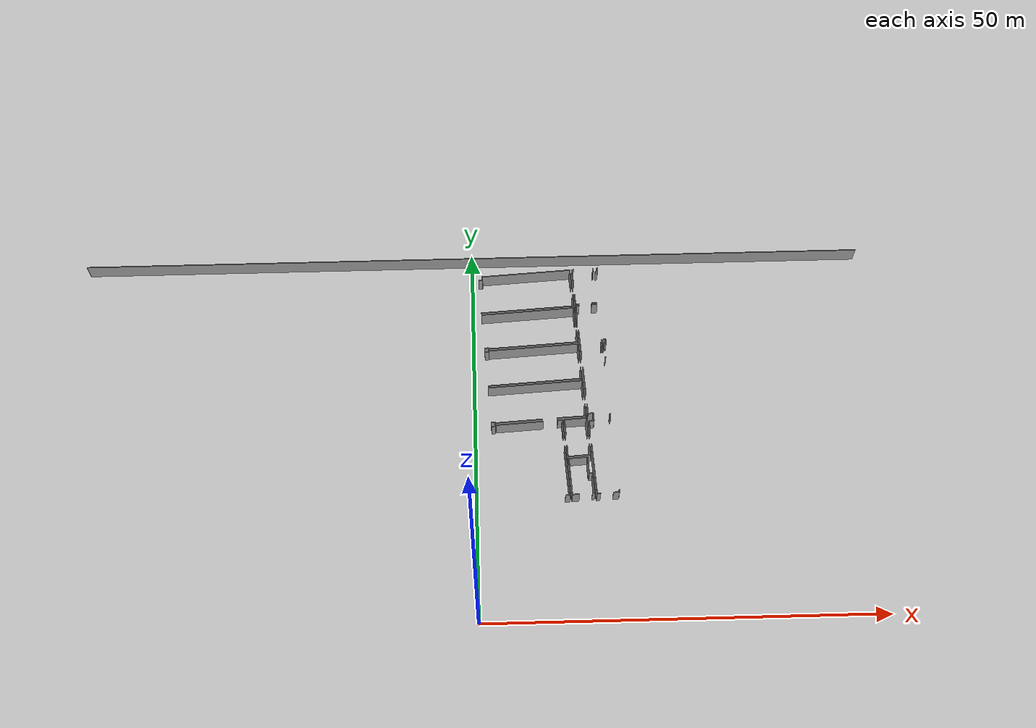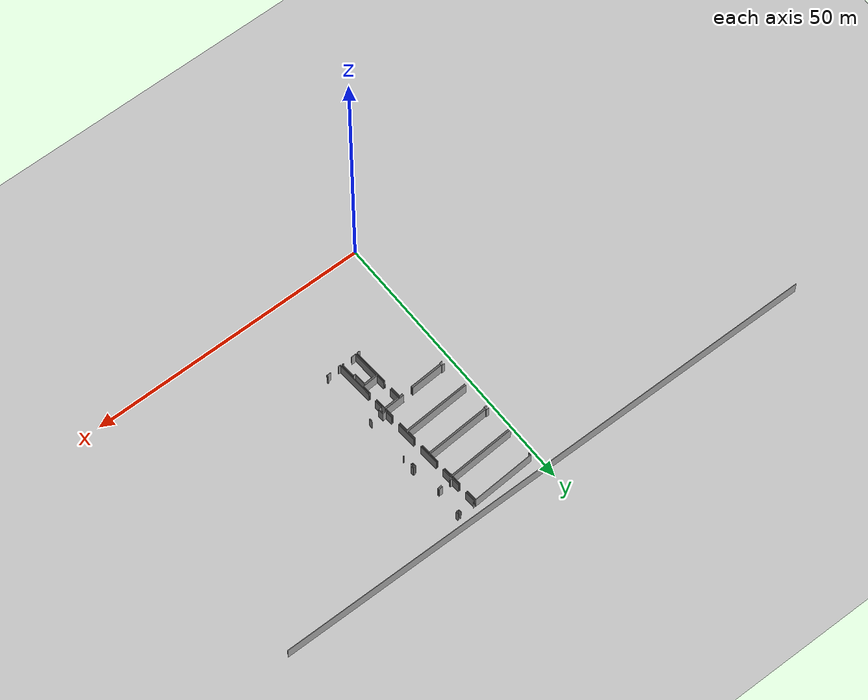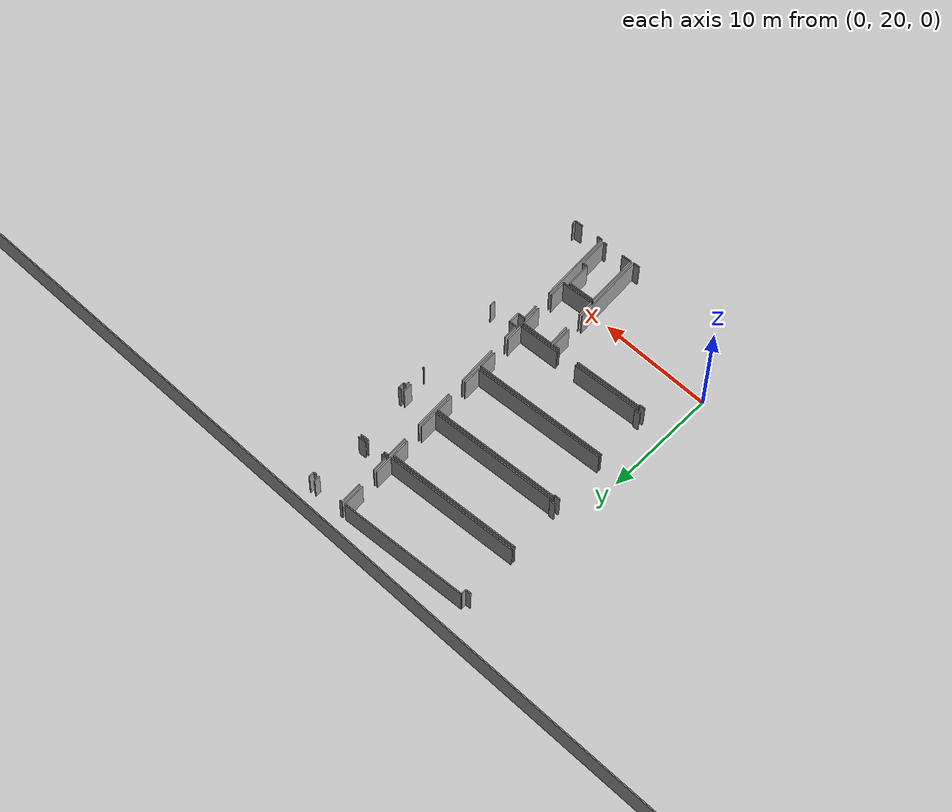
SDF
<sdf version="1.6">
 <world name="default">
  <model name="ground_plane">
   <static>1</static>
   <link name="link">
    <collision name="collision">
     <geometry><plane><normal>0 0 1</normal><size>100 100</size></plane></geometry>
     <surface><friction><ode><mu>100</mu><mu2>50</mu2></ode></friction></surface>
    </collision>
    <visual name="visual">
     <cast_shadows>0</cast_shadows>
     <geometry><plane><normal>0 0 1</normal><size>100 100</size></plane></geometry>
     <material>
      <script><uri>file://media/materials/scripts/gazebo.material</uri><name>Gazebo/Grey</name></script>
     </material>
    </visual>
   </link>
  </model>
  <model name="50025632">
   <static>1</static>
   <link name="Wall_0">
    <collision name="Wall_0_Collision">
     <geometry><box><size>11.9319441098 0.1 2.5</size></box></geometry>
     <pose>5.96597205492 0 1.25 0 0 0</pose>
    </collision>
    <visual name="Wall_0_Visual">
     <pose>5.96597205492 0 1.25 0 0 0</pose>
     <geometry><box><size>11.9319441098 0.1 2.5</size></box></geometry>
     <material>
      <script><uri>file://media/materials/scripts/gazebo.material</uri><name>Gazebo/Grey</name></script>
      <ambient>1 1 1 1</ambient>
     </material>
    </visual>
    <pose>63.141229591 -7.22308801209 0 0 0 -3.0817129507</pose>
   </link>
   <link name="Wall_1">
    <collision name="Wall_1_Collision">
     <geometry><box><size>0.485071288327 0.1 2.5</size></box></geometry>
     <pose>0.242535644164 0 1.25 0 0 0</pose>
    </collision>
    <visual name="Wall_1_Visual">
     <pose>0.242535644164 0 1.25 0 0 0</pose>
     <geometry><box><size>0.485071288327 0.1 2.5</size></box></geometry>
     <material>
      <script><uri>file://media/materials/scripts/gazebo.material</uri><name>Gazebo/Grey</name></script>
      <ambient>1 1 1 1</ambient>
     </material>
    </visual>
    <pose>50.9575974649 -3.2139940432 0 0 0 0.0518674391414</pose>
   </link>
   <link name="Wall_2">
    <collision name="Wall_2_Collision">
     <geometry><box><size>0.484582056046 0.1 2.5</size></box></geometry>
     <pose>0.242291028023 0 1.25 0 0 0</pose>
    </collision>
    <visual name="Wall_2_Visual">
     <pose>0.242291028023 0 1.25 0 0 0</pose>
     <geometry><box><size>0.484582056046 0.1 2.5</size></box></geometry>
     <material>
      <script><uri>file://media/materials/scripts/gazebo.material</uri><name>Gazebo/Grey</name></script>
      <ambient>1 1 1 1</ambient>
     </material>
    </visual>
    <pose>51.4420164225 -3.18884591692 0 0 0 1.60540091813</pose>
   </link>
   <link name="Wall_3">
    <collision name="Wall_3_Collision">
     <geometry><box><size>11.4140309421 0.1 2.5</size></box></geometry>
     <pose>5.70701547103 0 1.25 0 0 0</pose>
    </collision>
    <visual name="Wall_3_Visual">
     <pose>5.70701547103 0 1.25 0 0 0</pose>
     <geometry><box><size>11.4140309421 0.1 2.5</size></box></geometry>
     <material>
      <script><uri>file://media/materials/scripts/gazebo.material</uri><name>Gazebo/Grey</name></script>
      <ambient>1 1 1 1</ambient>
     </material>
    </visual>
    <pose>51.425251005 -2.70455397004 0 0 0 0.0610940113321</pose>
   </link>
   <link name="Wall_4">
    <collision name="Wall_4_Collision">
     <geometry><box><size>1.96252891204 0.1 2.5</size></box></geometry>
     <pose>0.981264456021 0 1.25 0 0 0</pose>
    </collision>
    <visual name="Wall_4_Visual">
     <pose>0.981264456021 0 1.25 0 0 0</pose>
     <geometry><box><size>1.96252891204 0.1 2.5</size></box></geometry>
     <material>
      <script><uri>file://media/materials/scripts/gazebo.material</uri><name>Gazebo/Grey</name></script>
      <ambient>1 1 1 1</ambient>
     </material>
    </visual>
    <pose>62.8179872608 -2.00765874755 0 0 0 -1.49993566396</pose>
   </link>
   <link name="Wall_5">
    <collision name="Wall_5_Collision">
     <geometry><box><size>1.64788721188 0.1 2.5</size></box></geometry>
     <pose>0.823943605938 0 1.25 0 0 0</pose>
    </collision>
    <visual name="Wall_5_Visual">
     <pose>0.823943605938 0 1.25 0 0 0</pose>
     <geometry><box><size>1.64788721188 0.1 2.5</size></box></geometry>
     <material>
      <script><uri>file://media/materials/scripts/gazebo.material</uri><name>Gazebo/Grey</name></script>
      <ambient>1 1 1 1</ambient>
     </material>
    </visual>
    <pose>63.0584185893 -5.57728285927 0 0 0 -1.52052231826</pose>
   </link>
   <link name="Wall_6">
    <collision name="Wall_6_Collision">
     <geometry><box><size>0.537846532029 0.1 2.5</size></box></geometry>
     <pose>0.268923266014 0 1.25 0 0 0</pose>
    </collision>
    <visual name="Wall_6_Visual">
     <pose>0.268923266014 0 1.25 0 0 0</pose>
     <geometry><box><size>0.537846532029 0.1 2.5</size></box></geometry>
     <material>
      <script><uri>file://media/materials/scripts/gazebo.material</uri><name>Gazebo/Grey</name></script>
      <ambient>1 1 1 1</ambient>
     </material>
    </visual>
    <pose>65.8941873535 -2.32657001149 0 0 0 1.61118841254</pose>
   </link>
   <link name="Wall_7">
    <collision name="Wall_7_Collision">
     <geometry><box><size>0.226241075941 0.1 2.5</size></box></geometry>
     <pose>0.113120537971 0 1.25 0 0 0</pose>
    </collision>
    <visual name="Wall_7_Visual">
     <pose>0.113120537971 0 1.25 0 0 0</pose>
     <geometry><box><size>0.226241075941 0.1 2.5</size></box></geometry>
     <material>
      <script><uri>file://media/materials/scripts/gazebo.material</uri><name>Gazebo/Grey</name></script>
      <ambient>1 1 1 1</ambient>
     </material>
    </visual>
    <pose>63.3308566239 -1.96345901046 0 0 0 -3.04516394172</pose>
   </link>
   <link name="Wall_8">
    <collision name="Wall_8_Collision">
     <geometry><box><size>1.96459832486 0.1 2.5</size></box></geometry>
     <pose>0.982299162432 0 1.25 0 0 0</pose>
    </collision>
    <visual name="Wall_8_Visual">
     <pose>0.982299162432 0 1.25 0 0 0</pose>
     <geometry><box><size>1.96459832486 0.1 2.5</size></box></geometry>
     <material>
      <script><uri>file://media/materials/scripts/gazebo.material</uri><name>Gazebo/Grey</name></script>
      <ambient>1 1 1 1</ambient>
     </material>
    </visual>
    <pose>63.1056665841 -1.98524135216 0 0 0 -1.5079153649</pose>
   </link>
   <link name="Wall_9">
    <collision name="Wall_9_Collision">
     <geometry><box><size>1.43350711796 0.1 2.5</size></box></geometry>
     <pose>0.716753558979 0 1.25 0 0 0</pose>
    </collision>
    <visual name="Wall_9_Visual">
     <pose>0.716753558979 0 1.25 0 0 0</pose>
     <geometry><box><size>1.43350711796 0.1 2.5</size></box></geometry>
     <material>
      <script><uri>file://media/materials/scripts/gazebo.material</uri><name>Gazebo/Grey</name></script>
      <ambient>1 1 1 1</ambient>
     </material>
    </visual>
    <pose>63.3073596373 -5.54146583094 0 0 0 -1.51051086458</pose>
   </link>
   <link name="Wall_10">
    <collision name="Wall_10_Collision">
     <geometry><box><size>0.461447703476 0.1 2.5</size></box></geometry>
     <pose>0.230723851738 0 1.25 0 0 0</pose>
    </collision>
    <visual name="Wall_10_Visual">
     <pose>0.230723851738 0 1.25 0 0 0</pose>
     <geometry><box><size>0.461447703476 0.1 2.5</size></box></geometry>
     <material>
      <script><uri>file://media/materials/scripts/gazebo.material</uri><name>Gazebo/Grey</name></script>
      <ambient>1 1 1 1</ambient>
     </material>
    </visual>
    <pose>63.3937269396 -6.97236881378 0 0 0 0.041573827738</pose>
   </link>
   <link name="Wall_11">
    <collision name="Wall_11_Collision">
     <geometry><box><size>0.696910527662 0.1 2.5</size></box></geometry>
     <pose>0.348455263831 0 1.25 0 0 0</pose>
    </collision>
    <visual name="Wall_11_Visual">
     <pose>0.348455263831 0 1.25 0 0 0</pose>
     <geometry><box><size>0.696910527662 0.1 2.5</size></box></geometry>
     <material>
      <script><uri>file://media/materials/scripts/gazebo.material</uri><name>Gazebo/Grey</name></script>
      <ambient>1 1 1 1</ambient>
     </material>
    </visual>
    <pose>65.4720036579 -6.83837248439 0 0 0 0.066204474528</pose>
   </link>
   <link name="Wall_12">
    <collision name="Wall_12_Collision">
     <geometry><box><size>0.73059117325 0.1 2.5</size></box></geometry>
     <pose>0.365295586625 0 1.25 0 0 0</pose>
    </collision>
    <visual name="Wall_12_Visual">
     <pose>0.365295586625 0 1.25 0 0 0</pose>
     <geometry><box><size>0.73059117325 0.1 2.5</size></box></geometry>
     <material>
      <script><uri>file://media/materials/scripts/gazebo.material</uri><name>Gazebo/Grey</name></script>
      <ambient>1 1 1 1</ambient>
     </material>
    </visual>
    <pose>67.7467659891 -32.8350575041 0 0 0 -3.09515894658</pose>
   </link>
   <link name="Wall_13">
    <collision name="Wall_13_Collision">
     <geometry><box><size>0.443212248809 0.1 2.5</size></box></geometry>
     <pose>0.221606124404 0 1.25 0 0 0</pose>
    </collision>
    <visual name="Wall_13_Visual">
     <pose>0.221606124404 0 1.25 0 0 0</pose>
     <geometry><box><size>0.443212248809 0.1 2.5</size></box></geometry>
     <material>
      <script><uri>file://media/materials/scripts/gazebo.material</uri><name>Gazebo/Grey</name></script>
      <ambient>1 1 1 1</ambient>
     </material>
    </visual>
    <pose>65.4468555316 -32.9524154267 0 0 0 -3.08510859811</pose>
   </link>
   <link name="Wall_14">
    <collision name="Wall_14_Collision">
     <geometry><box><size>6.64681639379 0.1 2.5</size></box></geometry>
     <pose>3.3234081969 0 1.25 0 0 0</pose>
    </collision>
    <visual name="Wall_14_Visual">
     <pose>3.3234081969 0 1.25 0 0 0</pose>
     <geometry><box><size>6.64681639379 0.1 2.5</size></box></geometry>
     <material>
      <script><uri>file://media/materials/scripts/gazebo.material</uri><name>Gazebo/Grey</name></script>
      <ambient>1 1 1 1</ambient>
     </material>
    </visual>
    <pose>65.0043501178 -32.9774365423 0 0 0 1.63253691382</pose>
   </link>
   <link name="Wall_15">
    <collision name="Wall_15_Collision">
     <geometry><box><size>1.42461677082 0.1 2.5</size></box></geometry>
     <pose>0.712308385411 0 1.25 0 0 0</pose>
    </collision>
    <visual name="Wall_15_Visual">
     <pose>0.712308385411 0 1.25 0 0 0</pose>
     <geometry><box><size>1.42461677082 0.1 2.5</size></box></geometry>
     <material>
      <script><uri>file://media/materials/scripts/gazebo.material</uri><name>Gazebo/Grey</name></script>
      <ambient>1 1 1 1</ambient>
     </material>
    </visual>
    <pose>64.50786514 -24.7395200264 0 0 0 1.6382481288</pose>
   </link>
   <link name="Wall_16">
    <collision name="Wall_16_Collision">
     <geometry><box><size>0.625316124992 0.1 2.5</size></box></geometry>
     <pose>0.312658062496 0 1.25 0 0 0</pose>
    </collision>
    <visual name="Wall_16_Visual">
     <pose>0.312658062496 0 1.25 0 0 0</pose>
     <geometry><box><size>0.625316124992 0.1 2.5</size></box></geometry>
     <material>
      <script><uri>file://media/materials/scripts/gazebo.material</uri><name>Gazebo/Grey</name></script>
      <ambient>1 1 1 1</ambient>
     </material>
    </visual>
    <pose>64.4118450215 -23.318142849 0 0 0 0.0615825944472</pose>
   </link>
   <link name="Wall_17">
    <collision name="Wall_17_Collision">
     <geometry><box><size>1.02863788448 0.1 2.5</size></box></geometry>
     <pose>0.51431894224 0 1.25 0 0 0</pose>
    </collision>
    <visual name="Wall_17_Visual">
     <pose>0.51431894224 0 1.25 0 0 0</pose>
     <geometry><box><size>1.02863788448 0.1 2.5</size></box></geometry>
     <material>
      <script><uri>file://media/materials/scripts/gazebo.material</uri><name>Gazebo/Grey</name></script>
      <ambient>1 1 1 1</ambient>
     </material>
    </visual>
    <pose>65.0359757918 -23.2796585951 0 0 0 1.61748671999</pose>
   </link>
   <link name="Wall_18">
    <collision name="Wall_18_Collision">
     <geometry><box><size>0.644578685827 0.1 2.5</size></box></geometry>
     <pose>0.322289342913 0 1.25 0 0 0</pose>
    </collision>
    <visual name="Wall_18_Visual">
     <pose>0.322289342913 0 1.25 0 0 0</pose>
     <geometry><box><size>0.644578685827 0.1 2.5</size></box></geometry>
     <material>
      <script><uri>file://media/materials/scripts/gazebo.material</uri><name>Gazebo/Grey</name></script>
      <ambient>1 1 1 1</ambient>
     </material>
    </visual>
    <pose>64.9879657325 -22.2521417186 0 0 0 -3.08205001256</pose>
   </link>
   <link name="Wall_19">
    <collision name="Wall_19_Collision">
     <geometry><box><size>1.33709269581 0.1 2.5</size></box></geometry>
     <pose>0.668546347903 0 1.25 0 0 0</pose>
    </collision>
    <visual name="Wall_19_Visual">
     <pose>0.668546347903 0 1.25 0 0 0</pose>
     <geometry><box><size>1.33709269581 0.1 2.5</size></box></geometry>
     <material>
      <script><uri>file://media/materials/scripts/gazebo.material</uri><name>Gazebo/Grey</name></script>
      <ambient>1 1 1 1</ambient>
     </material>
    </visual>
    <pose>64.34452933 -22.2904989617 0 0 0 1.62829709509</pose>
   </link>
   <link name="Wall_20">
    <collision name="Wall_20_Collision">
     <geometry><box><size>3.53377127692 0.1 2.5</size></box></geometry>
     <pose>1.76688563846 0 1.25 0 0 0</pose>
    </collision>
    <visual name="Wall_20_Visual">
     <pose>1.76688563846 0 1.25 0 0 0</pose>
     <geometry><box><size>3.53377127692 0.1 2.5</size></box></geometry>
     <material>
      <script><uri>file://media/materials/scripts/gazebo.material</uri><name>Gazebo/Grey</name></script>
      <ambient>1 1 1 1</ambient>
     </material>
    </visual>
    <pose>64.1672223386 -19.3514704668 0 0 0 1.6317197228</pose>
   </link>
   <link name="Wall_21">
    <collision name="Wall_21_Collision">
     <geometry><box><size>3.55478971893 0.1 2.5</size></box></geometry>
     <pose>1.77739485946 0 1.25 0 0 0</pose>
    </collision>
    <visual name="Wall_21_Visual">
     <pose>1.77739485946 0 1.25 0 0 0</pose>
     <geometry><box><size>3.55478971893 0.1 2.5</size></box></geometry>
     <material>
      <script><uri>file://media/materials/scripts/gazebo.material</uri><name>Gazebo/Grey</name></script>
      <ambient>1 1 1 1</ambient>
     </material>
    </visual>
    <pose>63.8410587615 -14.2328106841 0 0 0 1.6318244008</pose>
   </link>
   <link name="Wall_22">
    <collision name="Wall_22_Collision">
     <geometry><box><size>1.89873595495 0.1 2.5</size></box></geometry>
     <pose>0.949367977477 0 1.25 0 0 0</pose>
    </collision>
    <visual name="Wall_22_Visual">
     <pose>0.949367977477 0 1.25 0 0 0</pose>
     <geometry><box><size>1.89873595495 0.1 2.5</size></box></geometry>
     <material>
      <script><uri>file://media/materials/scripts/gazebo.material</uri><name>Gazebo/Grey</name></script>
      <ambient>1 1 1 1</ambient>
     </material>
    </visual>
    <pose>63.5344548382 -9.10983253634 0 0 0 1.62795343299</pose>
   </link>
   <link name="Wall_23">
    <collision name="Wall_23_Collision">
     <geometry><box><size>0.42594950112 0.1 2.5</size></box></geometry>
     <pose>0.21297475056 0 1.25 0 0 0</pose>
    </collision>
    <visual name="Wall_23_Visual">
     <pose>0.21297475056 0 1.25 0 0 0</pose>
     <geometry><box><size>0.42594950112 0.1 2.5</size></box></geometry>
     <material>
      <script><uri>file://media/materials/scripts/gazebo.material</uri><name>Gazebo/Grey</name></script>
      <ambient>1 1 1 1</ambient>
     </material>
    </visual>
    <pose>63.4259876673 -7.21419726038 0 0 0 0.0196813235851</pose>
   </link>
   <link name="Wall_24">
    <collision name="Wall_24_Collision">
     <geometry><box><size>0.720673750226 0.1 2.5</size></box></geometry>
     <pose>0.360336875113 0 1.25 0 0 0</pose>
    </collision>
    <visual name="Wall_24_Visual">
     <pose>0.360336875113 0 1.25 0 0 0</pose>
     <geometry><box><size>0.720673750226 0.1 2.5</size></box></geometry>
     <material>
      <script><uri>file://media/materials/scripts/gazebo.material</uri><name>Gazebo/Grey</name></script>
      <ambient>1 1 1 1</ambient>
     </material>
    </visual>
    <pose>65.4657801317 -7.0976014022 0 0 0 0.0705540746717</pose>
   </link>
   <link name="Wall_25">
    <collision name="Wall_25_Collision">
     <geometry><box><size>0.823300939671 0.1 2.5</size></box></geometry>
     <pose>0.411650469836 0 1.25 0 0 0</pose>
    </collision>
    <visual name="Wall_25_Visual">
     <pose>0.411650469836 0 1.25 0 0 0</pose>
     <geometry><box><size>0.823300939671 0.1 2.5</size></box></geometry>
     <material>
      <script><uri>file://media/materials/scripts/gazebo.material</uri><name>Gazebo/Grey</name></script>
      <ambient>1 1 1 1</ambient>
     </material>
    </visual>
    <pose>66.5150158446 -12.0336197425 0 0 0 -1.53098411828</pose>
   </link>
   <link name="Wall_26">
    <collision name="Wall_26_Collision">
     <geometry><box><size>0.525538038728 0.1 2.5</size></box></geometry>
     <pose>0.262769019364 0 1.25 0 0 0</pose>
    </collision>
    <visual name="Wall_26_Visual">
     <pose>0.262769019364 0 1.25 0 0 0</pose>
     <geometry><box><size>0.525538038728 0.1 2.5</size></box></geometry>
     <material>
      <script><uri>file://media/materials/scripts/gazebo.material</uri><name>Gazebo/Grey</name></script>
      <ambient>1 1 1 1</ambient>
     </material>
    </visual>
    <pose>67.0993922536 -22.2903719509 0 0 0 -1.49871401541</pose>
   </link>
   <link name="Wall_27">
    <collision name="Wall_27_Collision">
     <geometry><box><size>0.293706532019 0.1 2.5</size></box></geometry>
     <pose>0.14685326601 0 1.25 0 0 0</pose>
    </collision>
    <visual name="Wall_27_Visual">
     <pose>0.14685326601 0 1.25 0 0 0</pose>
     <geometry><box><size>0.293706532019 0.1 2.5</size></box></geometry>
     <material>
      <script><uri>file://media/materials/scripts/gazebo.material</uri><name>Gazebo/Grey</name></script>
      <ambient>1 1 1 1</ambient>
     </material>
    </visual>
    <pose>67.7363511085 -32.5415356868 0 0 0 -1.53532873132</pose>
   </link>
   <link name="Wall_28">
    <collision name="Wall_28_Collision">
     <geometry><box><size>11.4503002531 0.1 2.5</size></box></geometry>
     <pose>5.72515012656 0 1.25 0 0 0</pose>
    </collision>
    <visual name="Wall_28_Visual">
     <pose>5.72515012656 0 1.25 0 0 0</pose>
     <geometry><box><size>11.4503002531 0.1 2.5</size></box></geometry>
     <material>
      <script><uri>file://media/materials/scripts/gazebo.material</uri><name>Gazebo/Grey</name></script>
      <ambient>1 1 1 1</ambient>
     </material>
    </visual>
    <pose>63.4724735976 -12.358640223 0 0 0 -3.08271372285</pose>
   </link>
   <link name="Wall_29">
    <collision name="Wall_29_Collision">
     <geometry><box><size>0.119759475574 0.1 2.5</size></box></geometry>
     <pose>0.0598797377871 0 1.25 0 0 0</pose>
    </collision>
    <visual name="Wall_29_Visual">
     <pose>0.0598797377871 0 1.25 0 0 0</pose>
     <geometry><box><size>0.119759475574 0.1 2.5</size></box></geometry>
     <material>
      <script><uri>file://media/materials/scripts/gazebo.material</uri><name>Gazebo/Grey</name></script>
      <ambient>1 1 1 1</ambient>
     </material>
    </visual>
    <pose>52.0420151524 -13.0324321921 0 0 0 1.64935770696</pose>
   </link>
   <link name="Wall_30">
    <collision name="Wall_30_Collision">
     <geometry><box><size>0.492915962791 0.1 2.5</size></box></geometry>
     <pose>0.246457981396 0 1.25 0 0 0</pose>
    </collision>
    <visual name="Wall_30_Visual">
     <pose>0.246457981396 0 1.25 0 0 0</pose>
     <geometry><box><size>0.492915962791 0.1 2.5</size></box></geometry>
     <material>
      <script><uri>file://media/materials/scripts/gazebo.material</uri><name>Gazebo/Grey</name></script>
      <ambient>1 1 1 1</ambient>
     </material>
    </visual>
    <pose>52.0326163577 -12.9130420977 0 0 0 -3.10293219433</pose>
   </link>
   <link name="Wall_31">
    <collision name="Wall_31_Collision">
     <geometry><box><size>11.9212283438 0.1 2.5</size></box></geometry>
     <pose>5.96061417188 0 1.25 0 0 0</pose>
    </collision>
    <visual name="Wall_31_Visual">
     <pose>5.96061417188 0 1.25 0 0 0</pose>
     <geometry><box><size>11.9212283438 0.1 2.5</size></box></geometry>
     <material>
      <script><uri>file://media/materials/scripts/gazebo.material</uri><name>Gazebo/Grey</name></script>
      <ambient>1 1 1 1</ambient>
     </material>
    </visual>
    <pose>51.2415934767 -8.22469469794 0 0 0 0.0617695069085</pose>
   </link>
   <link name="Wall_32">
    <collision name="Wall_32_Collision">
     <geometry><box><size>1.60837630227 0.1 2.5</size></box></geometry>
     <pose>0.804188151137 0 1.25 0 0 0</pose>
    </collision>
    <visual name="Wall_32_Visual">
     <pose>0.804188151137 0 1.25 0 0 0</pose>
     <geometry><box><size>1.60837630227 0.1 2.5</size></box></geometry>
     <material>
      <script><uri>file://media/materials/scripts/gazebo.material</uri><name>Gazebo/Grey</name></script>
      <ambient>1 1 1 1</ambient>
     </material>
    </visual>
    <pose>63.1400864943 -7.48879447757 0 0 0 -1.49610184806</pose>
   </link>
   <link name="Wall_33">
    <collision name="Wall_33_Collision">
     <geometry><box><size>1.66402897746 0.1 2.5</size></box></geometry>
     <pose>0.832014488731 0 1.25 0 0 0</pose>
    </collision>
    <visual name="Wall_33_Visual">
     <pose>0.832014488731 0 1.25 0 0 0</pose>
     <geometry><box><size>1.66402897746 0.1 2.5</size></box></geometry>
     <material>
      <script><uri>file://media/materials/scripts/gazebo.material</uri><name>Gazebo/Grey</name></script>
      <ambient>1 1 1 1</ambient>
     </material>
    </visual>
    <pose>63.3553696965 -10.6987368782 0 0 0 -1.50036439472</pose>
   </link>
   <link name="Wall_34">
    <collision name="Wall_34_Collision">
     <geometry><box><size>11.8869431422 0.1 2.5</size></box></geometry>
     <pose>5.94347157111 0 1.25 0 0 0</pose>
    </collision>
    <visual name="Wall_34_Visual">
     <pose>5.94347157111 0 1.25 0 0 0</pose>
     <geometry><box><size>11.8869431422 0.1 2.5</size></box></geometry>
     <material>
      <script><uri>file://media/materials/scripts/gazebo.material</uri><name>Gazebo/Grey</name></script>
      <ambient>1 1 1 1</ambient>
     </material>
    </visual>
    <pose>63.7404662564 -17.4723465869 0 0 0 -3.08024425153</pose>
   </link>
   <link name="Wall_35">
    <collision name="Wall_35_Collision">
     <geometry><box><size>0.493086768847 0.1 2.5</size></box></geometry>
     <pose>0.246543384424 0 1.25 0 0 0</pose>
    </collision>
    <visual name="Wall_35_Visual">
     <pose>0.246543384424 0 1.25 0 0 0</pose>
     <geometry><box><size>0.493086768847 0.1 2.5</size></box></geometry>
     <material>
      <script><uri>file://media/materials/scripts/gazebo.material</uri><name>Gazebo/Grey</name></script>
      <ambient>1 1 1 1</ambient>
     </material>
    </visual>
    <pose>51.5672490109 -13.4692221227 0 0 0 0.034007502481</pose>
   </link>
   <link name="Wall_36">
    <collision name="Wall_36_Collision">
     <geometry><box><size>0.125232588415 0.1 2.5</size></box></geometry>
     <pose>0.0626162942077 0 1.25 0 0 0</pose>
    </collision>
    <visual name="Wall_36_Visual">
     <pose>0.0626162942077 0 1.25 0 0 0</pose>
     <geometry><box><size>0.125232588415 0.1 2.5</size></box></geometry>
     <material>
      <script><uri>file://media/materials/scripts/gazebo.material</uri><name>Gazebo/Grey</name></script>
      <ambient>1 1 1 1</ambient>
     </material>
    </visual>
    <pose>52.0600506773 -13.4524567052 0 0 0 1.57079632679</pose>
   </link>
   <link name="Wall_37">
    <collision name="Wall_37_Collision">
     <geometry><box><size>11.4309730152 0.1 2.5</size></box></geometry>
     <pose>5.71548650758 0 1.25 0 0 0</pose>
    </collision>
    <visual name="Wall_37_Visual">
     <pose>5.71548650758 0 1.25 0 0 0</pose>
     <geometry><box><size>11.4309730152 0.1 2.5</size></box></geometry>
     <material>
      <script><uri>file://media/materials/scripts/gazebo.material</uri><name>Gazebo/Grey</name></script>
      <ambient>1 1 1 1</ambient>
     </material>
    </visual>
    <pose>52.0600506773 -13.3272241168 0 0 0 0.06093767255</pose>
   </link>
   <link name="Wall_38">
    <collision name="Wall_38_Collision">
     <geometry><box><size>1.61235572108 0.1 2.5</size></box></geometry>
     <pose>0.806177860539 0 1.25 0 0 0</pose>
    </collision>
    <visual name="Wall_38_Visual">
     <pose>0.806177860539 0 1.25 0 0 0</pose>
     <geometry><box><size>1.61235572108 0.1 2.5</size></box></geometry>
     <material>
      <script><uri>file://media/materials/scripts/gazebo.material</uri><name>Gazebo/Grey</name></script>
      <ambient>1 1 1 1</ambient>
     </material>
    </visual>
    <pose>63.4698063721 -12.6310782577 0 0 0 -1.50599925977</pose>
   </link>
   <link name="Wall_39">
    <collision name="Wall_39_Collision">
     <geometry><box><size>1.63288331644 0.1 2.5</size></box></geometry>
     <pose>0.81644165822 0 1.25 0 0 0</pose>
    </collision>
    <visual name="Wall_39_Visual">
     <pose>0.81644165822 0 1.25 0 0 0</pose>
     <geometry><box><size>1.63288331644 0.1 2.5</size></box></geometry>
     <material>
      <script><uri>file://media/materials/scripts/gazebo.material</uri><name>Gazebo/Grey</name></script>
      <ambient>1 1 1 1</ambient>
     </material>
    </visual>
    <pose>63.672134479 -15.8408936476 0 0 0 -1.52893679143</pose>
   </link>
   <link name="Wall_40">
    <collision name="Wall_40_Collision">
     <geometry><box><size>3.62623420739 0.1 2.5</size></box></geometry>
     <pose>1.8131171037 0 1.25 0 0 0</pose>
    </collision>
    <visual name="Wall_40_Visual">
     <pose>1.8131171037 0 1.25 0 0 0</pose>
     <geometry><box><size>3.62623420739 0.1 2.5</size></box></geometry>
     <material>
      <script><uri>file://media/materials/scripts/gazebo.material</uri><name>Gazebo/Grey</name></script>
      <ambient>1 1 1 1</ambient>
     </material>
    </visual>
    <pose>64.0910158954 -22.6189487321 0 0 0 -3.09025772282</pose>
   </link>
   <link name="Wall_41">
    <collision name="Wall_41_Collision">
     <geometry><box><size>5.99057736799 0.1 2.5</size></box></geometry>
     <pose>2.99528868399 0 1.25 0 0 0</pose>
    </collision>
    <visual name="Wall_41_Visual">
     <pose>2.99528868399 0 1.25 0 0 0</pose>
     <geometry><box><size>5.99057736799 0.1 2.5</size></box></geometry>
     <material>
      <script><uri>file://media/materials/scripts/gazebo.material</uri><name>Gazebo/Grey</name></script>
      <ambient>1 1 1 1</ambient>
     </material>
    </visual>
    <pose>58.65038389 -22.9218693441 0 0 0 -3.08087593922</pose>
   </link>
   <link name="Wall_42">
    <collision name="Wall_42_Collision">
     <geometry><box><size>0.138521442697 0.1 2.5</size></box></geometry>
     <pose>0.0692607213483 0 1.25 0 0 0</pose>
    </collision>
    <visual name="Wall_42_Visual">
     <pose>0.0692607213483 0 1.25 0 0 0</pose>
     <geometry><box><size>0.138521442697 0.1 2.5</size></box></geometry>
     <material>
      <script><uri>file://media/materials/scripts/gazebo.material</uri><name>Gazebo/Grey</name></script>
      <ambient>1 1 1 1</ambient>
     </material>
    </visual>
    <pose>52.67084532 -23.2853740784 0 0 0 1.60472825213</pose>
   </link>
   <link name="Wall_43">
    <collision name="Wall_43_Collision">
     <geometry><box><size>0.498081336563 0.1 2.5</size></box></geometry>
     <pose>0.249040668281 0 1.25 0 0 0</pose>
    </collision>
    <visual name="Wall_43_Visual">
     <pose>0.249040668281 0 1.25 0 0 0</pose>
     <geometry><box><size>0.498081336563 0.1 2.5</size></box></geometry>
     <material>
      <script><uri>file://media/materials/scripts/gazebo.material</uri><name>Gazebo/Grey</name></script>
      <ambient>1 1 1 1</ambient>
     </material>
    </visual>
    <pose>52.6661459226 -23.1469323731 0 0 0 -3.0647620895</pose>
   </link>
   <link name="Wall_44">
    <collision name="Wall_44_Collision">
     <geometry><box><size>11.9307856605 0.1 2.5</size></box></geometry>
     <pose>5.96539283023 0 1.25 0 0 0</pose>
    </collision>
    <visual name="Wall_44_Visual">
     <pose>5.96539283023 0 1.25 0 0 0</pose>
     <geometry><box><size>11.9307856605 0.1 2.5</size></box></geometry>
     <material>
      <script><uri>file://media/materials/scripts/gazebo.material</uri><name>Gazebo/Grey</name></script>
      <ambient>1 1 1 1</ambient>
     </material>
    </visual>
    <pose>51.8860459652 -18.4623952955 0 0 0 0.0596828950325</pose>
   </link>
   <link name="Wall_45">
    <collision name="Wall_45_Collision">
     <geometry><box><size>1.62172917607 0.1 2.5</size></box></geometry>
     <pose>0.810864588035 0 1.25 0 0 0</pose>
    </collision>
    <visual name="Wall_45_Visual">
     <pose>0.810864588035 0 1.25 0 0 0</pose>
     <geometry><box><size>1.62172917607 0.1 2.5</size></box></geometry>
     <material>
      <script><uri>file://media/materials/scripts/gazebo.material</uri><name>Gazebo/Grey</name></script>
      <ambient>1 1 1 1</ambient>
     </material>
    </visual>
    <pose>63.795588917 -17.7507541263 0 0 0 -1.51704423354</pose>
   </link>
   <link name="Wall_46">
    <collision name="Wall_46_Collision">
     <geometry><box><size>1.64488212049 0.1 2.5</size></box></geometry>
     <pose>0.822441060246 0 1.25 0 0 0</pose>
    </collision>
    <visual name="Wall_46_Visual">
     <pose>0.822441060246 0 1.25 0 0 0</pose>
     <geometry><box><size>1.64488212049 0.1 2.5</size></box></geometry>
     <material>
      <script><uri>file://media/materials/scripts/gazebo.material</uri><name>Gazebo/Grey</name></script>
      <ambient>1 1 1 1</ambient>
     </material>
    </visual>
    <pose>63.9894073044 -20.9772079229 0 0 0 -1.50898440637</pose>
   </link>
   <link name="Wall_47">
    <collision name="Wall_47_Collision">
     <geometry><box><size>0.103261683401 0.1 2.5</size></box></geometry>
     <pose>0.0516308417007 0 1.25 0 0 0</pose>
    </collision>
    <visual name="Wall_47_Visual">
     <pose>0.0516308417007 0 1.25 0 0 0</pose>
     <geometry><box><size>0.103261683401 0.1 2.5</size></box></geometry>
     <material>
      <script><uri>file://media/materials/scripts/gazebo.material</uri><name>Gazebo/Grey</name></script>
      <ambient>1 1 1 1</ambient>
     </material>
    </visual>
    <pose>66.8992233293 -14.6555024227 0 0 0 1.56464634283</pose>
   </link>
   <link name="Wall_48">
    <collision name="Wall_48_Collision">
     <geometry><box><size>0.307517523586 0.1 2.5</size></box></geometry>
     <pose>0.153758761793 0 1.25 0 0 0</pose>
    </collision>
    <visual name="Wall_48_Visual">
     <pose>0.153758761793 0 1.25 0 0 0</pose>
     <geometry><box><size>0.307517523586 0.1 2.5</size></box></geometry>
     <material>
      <script><uri>file://media/materials/scripts/gazebo.material</uri><name>Gazebo/Grey</name></script>
      <ambient>1 1 1 1</ambient>
     </material>
    </visual>
    <pose>66.7935503947 -12.8595705767 0 0 0 1.60219096697</pose>
   </link>
   <link name="Wall_49">
    <collision name="Wall_49_Collision">
     <geometry><box><size>0.26956484633 0.1 2.5</size></box></geometry>
     <pose>0.134782423165 0 1.25 0 0 0</pose>
    </collision>
    <visual name="Wall_49_Visual">
     <pose>0.134782423165 0 1.25 0 0 0</pose>
     <geometry><box><size>0.26956484633 0.1 2.5</size></box></geometry>
     <material>
      <script><uri>file://media/materials/scripts/gazebo.material</uri><name>Gazebo/Grey</name></script>
      <ambient>1 1 1 1</ambient>
     </material>
    </visual>
    <pose>66.7838975785 -12.5522045889 0 0 0 0.0712067564705</pose>
   </link>
   <link name="Wall_50">
    <collision name="Wall_50_Collision">
     <geometry><box><size>0.548758477054 0.1 2.5</size></box></geometry>
     <pose>0.274379238527 0 1.25 0 0 0</pose>
    </collision>
    <visual name="Wall_50_Visual">
     <pose>0.274379238527 0 1.25 0 0 0</pose>
     <geometry><box><size>0.548758477054 0.1 2.5</size></box></geometry>
     <material>
      <script><uri>file://media/materials/scripts/gazebo.material</uri><name>Gazebo/Grey</name></script>
      <ambient>1 1 1 1</ambient>
     </material>
    </visual>
    <pose>67.0527793125 -12.5330259673 0 0 0 1.64075159426</pose>
   </link>
   <link name="Wall_51">
    <collision name="Wall_51_Collision">
     <geometry><box><size>0.288060355503 0.1 2.5</size></box></geometry>
     <pose>0.144030177752 0 1.25 0 0 0</pose>
    </collision>
    <visual name="Wall_51_Visual">
     <pose>0.144030177752 0 1.25 0 0 0</pose>
     <geometry><box><size>0.288060355503 0.1 2.5</size></box></geometry>
     <material>
      <script><uri>file://media/materials/scripts/gazebo.material</uri><name>Gazebo/Grey</name></script>
      <ambient>1 1 1 1</ambient>
     </material>
    </visual>
    <pose>67.0144220694 -11.9856096833 0 0 0 3.14159265359</pose>
   </link>
   <link name="Wall_52">
    <collision name="Wall_52_Collision">
     <geometry><box><size>0.269020388887 0.1 2.5</size></box></geometry>
     <pose>0.134510194444 0 1.25 0 0 0</pose>
    </collision>
    <visual name="Wall_52_Visual">
     <pose>0.134510194444 0 1.25 0 0 0</pose>
     <geometry><box><size>0.269020388887 0.1 2.5</size></box></geometry>
     <material>
      <script><uri>file://media/materials/scripts/gazebo.material</uri><name>Gazebo/Grey</name></script>
      <ambient>1 1 1 1</ambient>
     </material>
    </visual>
    <pose>66.1484628525 -2.28297992595 0 0 0 0.0540371765282</pose>
   </link>
   <link name="Wall_53">
    <collision name="Wall_53_Collision">
     <geometry><box><size>0.5160446372 0.1 2.5</size></box></geometry>
     <pose>0.2580223186 0 1.25 0 0 0</pose>
    </collision>
    <visual name="Wall_53_Visual">
     <pose>0.2580223186 0 1.25 0 0 0</pose>
     <geometry><box><size>0.5160446372 0.1 2.5</size></box></geometry>
     <material>
      <script><uri>file://media/materials/scripts/gazebo.material</uri><name>Gazebo/Grey</name></script>
      <ambient>1 1 1 1</ambient>
     </material>
    </visual>
    <pose>66.417090565 -2.26844989744 0 0 0 1.61289588899</pose>
   </link>
   <link name="Wall_61">
    <collision name="Wall_61_Collision">
     <geometry><box><size>2.83009882769 0.1 2.5</size></box></geometry>
     <pose>1.41504941384 0 1.25 0 0 0</pose>
    </collision>
    <visual name="Wall_61_Visual">
     <pose>1.41504941384 0 1.25 0 0 0</pose>
     <geometry><box><size>2.83009882769 0.1 2.5</size></box></geometry>
     <material>
      <script><uri>file://media/materials/scripts/gazebo.material</uri><name>Gazebo/Grey</name></script>
      <ambient>1 1 1 1</ambient>
     </material>
    </visual>
    <pose>64.431023643 -27.8223246776 0 0 0 -3.07368410008</pose>
   </link>
   <link name="Wall_62">
    <collision name="Wall_62_Collision">
     <geometry><box><size>1.50118073534 0.1 2.5</size></box></geometry>
     <pose>0.750590367672 0 1.25 0 0 0</pose>
    </collision>
    <visual name="Wall_62_Visual">
     <pose>0.750590367672 0 1.25 0 0 0</pose>
     <geometry><box><size>1.50118073534 0.1 2.5</size></box></geometry>
     <material>
      <script><uri>file://media/materials/scripts/gazebo.material</uri><name>Gazebo/Grey</name></script>
      <ambient>1 1 1 1</ambient>
     </material>
    </visual>
    <pose>61.6074479097 -28.0143649146 0 0 0 1.61827882119</pose>
   </link>
   <link name="Wall_63">
    <collision name="Wall_63_Collision">
     <geometry><box><size>1.89099327487 0.1 2.5</size></box></geometry>
     <pose>0.945496637436 0 1.25 0 0 0</pose>
    </collision>
    <visual name="Wall_63_Visual">
     <pose>0.945496637436 0 1.25 0 0 0</pose>
     <geometry><box><size>1.89099327487 0.1 2.5</size></box></geometry>
     <material>
      <script><uri>file://media/materials/scripts/gazebo.material</uri><name>Gazebo/Grey</name></script>
      <ambient>1 1 1 1</ambient>
     </material>
    </visual>
    <pose>61.4550350232 -24.9353705856 0 0 0 1.63262857745</pose>
   </link>
   <link name="Wall_64">
    <collision name="Wall_64_Collision">
     <geometry><box><size>2.75997889027 0.1 2.5</size></box></geometry>
     <pose>1.37998944514 0 1.25 0 0 0</pose>
    </collision>
    <visual name="Wall_64_Visual">
     <pose>1.37998944514 0 1.25 0 0 0</pose>
     <geometry><box><size>2.75997889027 0.1 2.5</size></box></geometry>
     <material>
      <script><uri>file://media/materials/scripts/gazebo.material</uri><name>Gazebo/Grey</name></script>
      <ambient>1 1 1 1</ambient>
     </material>
    </visual>
    <pose>61.3381851436 -23.0479910076 0 0 0 0.0545131782623</pose>
   </link>
   <link name="Wall_65">
    <collision name="Wall_65_Collision">
     <geometry><box><size>1.86714543894 0.1 2.5</size></box></geometry>
     <pose>0.933572719468 0 1.25 0 0 0</pose>
    </collision>
    <visual name="Wall_65_Visual">
     <pose>0.933572719468 0 1.25 0 0 0</pose>
     <geometry><box><size>1.86714543894 0.1 2.5</size></box></geometry>
     <material>
      <script><uri>file://media/materials/scripts/gazebo.material</uri><name>Gazebo/Grey</name></script>
      <ambient>1 1 1 1</ambient>
     </material>
    </visual>
    <pose>64.0940641531 -22.897610293 0 0 0 -1.49917383881</pose>
   </link>
   <link name="Wall_66">
    <collision name="Wall_66_Collision">
     <geometry><box><size>1.5026507329 0.1 2.5</size></box></geometry>
     <pose>0.75132536645 0 1.25 0 0 0</pose>
    </collision>
    <visual name="Wall_66_Visual">
     <pose>0.75132536645 0 1.25 0 0 0</pose>
     <geometry><box><size>1.5026507329 0.1 2.5</size></box></geometry>
     <material>
      <script><uri>file://media/materials/scripts/gazebo.material</uri><name>Gazebo/Grey</name></script>
      <ambient>1 1 1 1</ambient>
     </material>
    </visual>
    <pose>64.3156978923 -26.3241060032 0 0 0 -1.49397257369</pose>
   </link>
   <link name="Wall_67">
    <collision name="Wall_67_Collision">
     <geometry><box><size>0.586412776009 0.1 2.5</size></box></geometry>
     <pose>0.293206388004 0 1.25 0 0 0</pose>
    </collision>
    <visual name="Wall_67_Visual">
     <pose>0.293206388004 0 1.25 0 0 0</pose>
     <geometry><box><size>0.586412776009 0.1 2.5</size></box></geometry>
     <material>
      <script><uri>file://media/materials/scripts/gazebo.material</uri><name>Gazebo/Grey</name></script>
      <ambient>1 1 1 1</ambient>
     </material>
    </visual>
    <pose>61.6905129329 -33.0686302527 0 0 0 -3.11191556201</pose>
   </link>
   <link name="Wall_71">
    <collision name="Wall_71_Collision">
     <geometry><box><size>0.506537759585 0.1 2.5</size></box></geometry>
     <pose>0.253268879793 0 1.25 0 0 0</pose>
    </collision>
    <visual name="Wall_71_Visual">
     <pose>0.253268879793 0 1.25 0 0 0</pose>
     <geometry><box><size>0.506537759585 0.1 2.5</size></box></geometry>
     <material>
      <script><uri>file://media/materials/scripts/gazebo.material</uri><name>Gazebo/Grey</name></script>
      <ambient>1 1 1 1</ambient>
     </material>
    </visual>
    <pose>52.2030647691 -23.7490902856 0 0 0 0.0747910865372</pose>
   </link>
   <link name="Wall_72">
    <collision name="Wall_72_Collision">
     <geometry><box><size>0.12653514569 0.1 2.5</size></box></geometry>
     <pose>0.0632675728451 0 1.25 0 0 0</pose>
    </collision>
    <visual name="Wall_72_Visual">
     <pose>0.0632675728451 0 1.25 0 0 0</pose>
     <geometry><box><size>0.12653514569 0.1 2.5</size></box></geometry>
     <material>
      <script><uri>file://media/materials/scripts/gazebo.material</uri><name>Gazebo/Grey</name></script>
      <ambient>1 1 1 1</ambient>
     </material>
    </visual>
    <pose>52.7081864772 -23.7112410854 0 0 0 1.52058730451</pose>
   </link>
   <link name="Wall_73">
    <collision name="Wall_73_Collision">
     <geometry><box><size>5.9885924287 0.1 2.5</size></box></geometry>
     <pose>2.99429621435 0 1.25 0 0 0</pose>
    </collision>
    <visual name="Wall_73_Visual">
     <pose>2.99429621435 0 1.25 0 0 0</pose>
     <geometry><box><size>5.9885924287 0.1 2.5</size></box></geometry>
     <material>
      <script><uri>file://media/materials/scripts/gazebo.material</uri><name>Gazebo/Grey</name></script>
      <ambient>1 1 1 1</ambient>
     </material>
    </visual>
    <pose>52.7145370141 -23.5848654004 0 0 0 0.0612043256776</pose>
   </link>
   <link name="Wall_74">
    <collision name="Wall_74_Collision">
     <geometry><box><size>0.578744009261 0.1 2.5</size></box></geometry>
     <pose>0.28937200463 0 1.25 0 0 0</pose>
    </collision>
    <visual name="Wall_74_Visual">
     <pose>0.28937200463 0 1.25 0 0 0</pose>
     <geometry><box><size>0.578744009261 0.1 2.5</size></box></geometry>
     <material>
      <script><uri>file://media/materials/scripts/gazebo.material</uri><name>Gazebo/Grey</name></script>
      <ambient>1 1 1 1</ambient>
     </material>
    </visual>
    <pose>60.4967389993 -23.1040027434 0 0 0 0.0579697100125</pose>
   </link>
   <link name="Wall_75">
    <collision name="Wall_75_Collision">
     <geometry><box><size>1.86221827151 0.1 2.5</size></box></geometry>
     <pose>0.931109135754 0 1.25 0 0 0</pose>
    </collision>
    <visual name="Wall_75_Visual">
     <pose>0.931109135754 0 1.25 0 0 0</pose>
     <geometry><box><size>1.86221827151 0.1 2.5</size></box></geometry>
     <material>
      <script><uri>file://media/materials/scripts/gazebo.material</uri><name>Gazebo/Grey</name></script>
      <ambient>1 1 1 1</ambient>
     </material>
    </visual>
    <pose>61.0745108499 -23.0704719084 0 0 0 -1.51613770922</pose>
   </link>
   <link name="Wall_76">
    <collision name="Wall_76_Collision">
     <geometry><box><size>6.54511322064 0.1 2.5</size></box></geometry>
     <pose>3.27255661032 0 1.25 0 0 0</pose>
    </collision>
    <visual name="Wall_76_Visual">
     <pose>3.27255661032 0 1.25 0 0 0</pose>
     <geometry><box><size>6.54511322064 0.1 2.5</size></box></geometry>
     <material>
      <script><uri>file://media/materials/scripts/gazebo.material</uri><name>Gazebo/Grey</name></script>
      <ambient>1 1 1 1</ambient>
     </material>
    </visual>
    <pose>61.2612166359 -26.537611055 0 0 0 -1.5051588516</pose>
   </link>
   <link name="Wall_77">
    <collision name="Wall_77_Collision">
     <geometry><box><size>0.307812667549 0.1 2.5</size></box></geometry>
     <pose>0.153906333774 0 1.25 0 0 0</pose>
    </collision>
    <visual name="Wall_77_Visual">
     <pose>0.153906333774 0 1.25 0 0 0</pose>
     <geometry><box><size>0.307812667549 0.1 2.5</size></box></geometry>
     <material>
      <script><uri>file://media/materials/scripts/gazebo.material</uri><name>Gazebo/Grey</name></script>
      <ambient>1 1 1 1</ambient>
     </material>
    </visual>
    <pose>64.7287368147 -32.8605866626 0 0 0 -3.0577318248</pose>
   </link>
   <link name="Wall_78">
    <collision name="Wall_78_Collision">
     <geometry><box><size>0.895436931959 0.1 2.5</size></box></geometry>
     <pose>0.44771846598 0 1.25 0 0 0</pose>
    </collision>
    <visual name="Wall_78_Visual">
     <pose>0.44771846598 0 1.25 0 0 0</pose>
     <geometry><box><size>0.895436931959 0.1 2.5</size></box></geometry>
     <material>
      <script><uri>file://media/materials/scripts/gazebo.material</uri><name>Gazebo/Grey</name></script>
      <ambient>1 1 1 1</ambient>
     </material>
    </visual>
    <pose>62.8413572368 -32.9774365423 0 0 0 -3.07615671434</pose>
   </link>
   <link name="Wall_79">
    <collision name="Wall_79_Collision">
     <geometry><box><size>4.76293905206 0.1 2.5</size></box></geometry>
     <pose>2.38146952603 0 1.25 0 0 0</pose>
    </collision>
    <visual name="Wall_79_Visual">
     <pose>2.38146952603 0 1.25 0 0 0</pose>
     <geometry><box><size>4.76293905206 0.1 2.5</size></box></geometry>
     <material>
      <script><uri>file://media/materials/scripts/gazebo.material</uri><name>Gazebo/Grey</name></script>
      <ambient>1 1 1 1</ambient>
     </material>
    </visual>
    <pose>61.9478366896 -33.0359884928 0 0 0 1.62655812773</pose>
   </link>
   <link name="Wall_80">
    <collision name="Wall_80_Collision">
     <geometry><box><size>2.335544311 0.1 2.5</size></box></geometry>
     <pose>1.1677721555 0 1.25 0 0 0</pose>
    </collision>
    <visual name="Wall_80_Visual">
     <pose>1.1677721555 0 1.25 0 0 0</pose>
     <geometry><box><size>2.335544311 0.1 2.5</size></box></geometry>
     <material>
      <script><uri>file://media/materials/scripts/gazebo.material</uri><name>Gazebo/Grey</name></script>
      <ambient>1 1 1 1</ambient>
     </material>
    </visual>
    <pose>61.6823842456 -28.2804524123 0 0 0 0.0621983148012</pose>
   </link>
   <link name="Wall_81">
    <collision name="Wall_81_Collision">
     <geometry><box><size>2.14093138815 0.1 2.5</size></box></geometry>
     <pose>1.07046569408 0 1.25 0 0 0</pose>
    </collision>
    <visual name="Wall_81_Visual">
     <pose>1.07046569408 0 1.25 0 0 0</pose>
     <geometry><box><size>2.14093138815 0.1 2.5</size></box></geometry>
     <material>
      <script><uri>file://media/materials/scripts/gazebo.material</uri><name>Gazebo/Grey</name></script>
      <ambient>1 1 1 1</ambient>
     </material>
    </visual>
    <pose>64.013412334 -28.1352791379 0 0 0 -1.51387292263</pose>
   </link>
   <link name="Wall_82">
    <collision name="Wall_82_Collision">
     <geometry><box><size>0.430693415128 0.1 2.5</size></box></geometry>
     <pose>0.215346707564 0 1.25 0 0 0</pose>
    </collision>
    <visual name="Wall_82_Visual">
     <pose>0.215346707564 0 1.25 0 0 0</pose>
     <geometry><box><size>0.430693415128 0.1 2.5</size></box></geometry>
     <material>
      <script><uri>file://media/materials/scripts/gazebo.material</uri><name>Gazebo/Grey</name></script>
      <ambient>1 1 1 1</ambient>
     </material>
    </visual>
    <pose>64.1352156325 -30.2727428604 0 0 0 0.0</pose>
   </link>
   <link name="Wall_83">
    <collision name="Wall_83_Collision">
     <geometry><box><size>2.59296132372 0.1 2.5</size></box></geometry>
     <pose>1.29648066186 0 1.25 0 0 0</pose>
    </collision>
    <visual name="Wall_83_Visual">
     <pose>1.29648066186 0 1.25 0 0 0</pose>
     <geometry><box><size>2.59296132372 0.1 2.5</size></box></geometry>
     <material>
      <script><uri>file://media/materials/scripts/gazebo.material</uri><name>Gazebo/Grey</name></script>
      <ambient>1 1 1 1</ambient>
     </material>
    </visual>
    <pose>64.5659090476 -30.2727428604 0 0 0 -1.50795891757</pose>
   </link>
   <link name="Wall_522">
    <collision name="Wall_522_Collision">
     <geometry><box><size>100.314478589 0.1 2.5</size></box></geometry>
     <pose>50.1572392946 0 1.25 0 0 0</pose>
    </collision>
    <visual name="Wall_522_Visual">
     <pose>50.1572392946 0 1.25 0 0 0</pose>
     <geometry><box><size>100.314478589 0.1 2.5</size></box></geometry>
     <material>
      <script><uri>file://media/materials/scripts/gazebo.material</uri><name>Gazebo/Grey</name></script>
      <ambient>1 1 1 1</ambient>
     </material>
    </visual>
   </link>
   <pose>-50.15 48.4557939124 0 0 0 0</pose>
  </model>
 </world>
</sdf>
